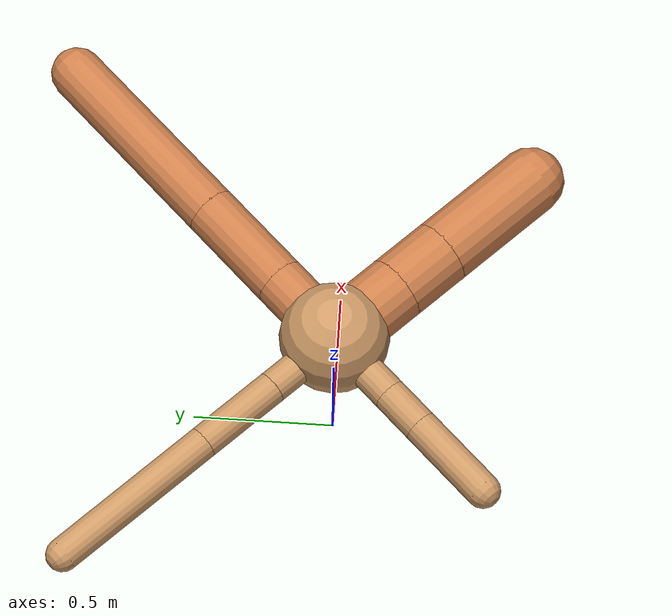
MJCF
<?xml version="1.0" ?>
<mujoco model="ant">

	<compiler angle="degree" coordinate="local" inertiafromgeom="true"/>

	<option integrator="RK4" timestep="0.01"/>

	<custom>

		<numeric data="0.0 0.0 0.55 1.0 0.0 0.0 0.0 0.0 1.0 0.0 -1.0 0.0 -1.0 0.0 1.0" name="init_qpos"/>

	</custom>

	<default>

		<joint armature="1" damping="1" limited="true"/>

		<geom conaffinity="0" condim="3" density="5.0" friction="1.5 0.1 0.1" margin="0.01" rgba="0.8 0.6 0.4 1"/>

	</default>

	<worldbody>

		<body name="torso" pos="0 0 0.75">

			<geom name="torso_geom" pos="0 0 0" size="0.19087914227119826" type="sphere"/>

			<!--joint armature="0" damping="0" limited="false" margin="0.01" name="root" pos="0 0 0" type="free"/-->

			<body name="front_left_leg" pos="0 0 0">

				<geom fromto="0 0 0 0.2 0.2 0" name="aux_1_geom" size="0.09326618933738874" type="capsule" rgba=".8 .5 .3 1"/>

				<body name="aux_1" pos="0.2 0.2 0">

					<joint axis="0 0 1" name="hip_1" pos="0.0 0.0 0.0" range="-40 40" type="hinge"/>

					<geom fromto="0 0 0 0.2565579507512408 0.2565579507512408 0" name="left_leg_geom" size="0.09326618933738874" type="capsule" rgba=".8 .5 .3 1"/>

					<body pos="0.2565579507512408 0.2565579507512408 0" name="front_left_foot">

						<joint axis="-1 1 0" name="ankle_1" pos="0.0 0.0 0.0" range="30 100" type="hinge"/>

						<geom fromto="0 0 0 0.5131159015024817 0.5131159015024817 0" name="left_ankle_geom" size="0.09326618933738874" type="capsule" rgba=".8 .5 .3 1"/>

					</body>

				</body>

			</body>

			<body name="front_right_leg" pos="0 0 0">

				<geom fromto="0 0 0 -0.2 0.2 0" name="aux_2_geom" size="0.058225992796513346" type="capsule"/>

				<body name="aux_2" pos="-0.2 0.2 0">

					<joint axis="0 0 1" name="hip_2" pos="0.0 0.0 0.0" range="-40 40" type="hinge"/>

					<geom fromto="0 0 0 -0.21772118273316285 0.21772118273316285 0" name="right_leg_geom" size="0.058225992796513346" type="capsule"/>

					<body pos="-0.21772118273316285 0.21772118273316285 0" name="front_right_foot">

						<joint axis="1 1 0" name="ankle_2" pos="0.0 0.0 0.0" range="-100 -30" type="hinge"/>

						<geom fromto="0 0 0 -0.4354423654663257 0.4354423654663257 0" name="right_ankle_geom" size="0.058225992796513346" type="capsule"/>

					</body>

				</body>

			</body>

			<body name="left_back_leg" pos="0 0 0">

				<geom fromto="0 0 0 -0.2 -0.2 0" name="aux_3_geom" size="0.06061870090160325" type="capsule"/>

				<body name="aux_3" pos="-0.2 -0.2 0">

					<joint axis="0 0 1" name="hip_3" pos="0.0 0.0 0.0" range="-40 40" type="hinge"/>

					<geom fromto="0 0 0 -0.11075438774131795 -0.11075438774131795 0" name="back_leg_geom" size="0.06061870090160325" type="capsule"/>

					<body pos="-0.11075438774131795 -0.11075438774131795 0" name="left_back_foot">

						<joint axis="-1 1 0" name="ankle_3" pos="0.0 0.0 0.0" range="-100 -30" type="hinge"/>

						<geom fromto="0 0 0 -0.2215087754826359 -0.2215087754826359 0" name="third_ankle_geom" size="0.06061870090160325" type="capsule"/>

					</body>

				</body>

			</body>

			<body name="right_back_leg" pos="0 0 0">

				<geom fromto="0 0 0 0.2 -0.2 0" name="aux_4_geom" size="0.11932442256961412" type="capsule" rgba=".8 .5 .3 1"/>

				<body name="aux_4" pos="0.2 -0.2 0">

					<joint axis="0 0 1" name="hip_4" pos="0.0 0.0 0.0" range="-40 40" type="hinge"/>

					<geom fromto="0 0 0 0.14836395418015133 -0.14836395418015133 0" name="rightback_leg_geom" size="0.11932442256961412" type="capsule" rgba=".8 .5 .3 1"/>

					<body pos="0.14836395418015133 -0.14836395418015133 0" name="right_back_foot">

						<joint axis="1 1 0" name="ankle_4" pos="0.0 0.0 0.0" range="30 100" type="hinge"/>

						<geom fromto="0 0 0 0.29672790836030266 -0.29672790836030266 0" name="fourth_ankle_geom" size="0.11932442256961412" type="capsule" rgba=".8 .5 .3 1"/>

					</body>

				</body>

			</body>

		</body>

	</worldbody>

	<actuator>

		<motor ctrllimited="true" ctrlrange="-1.0 1.0" joint="hip_4" gear="150"/>

		<motor ctrllimited="true" ctrlrange="-1.0 1.0" joint="ankle_4" gear="150"/>

		<motor ctrllimited="true" ctrlrange="-1.0 1.0" joint="hip_1" gear="150"/>

		<motor ctrllimited="true" ctrlrange="-1.0 1.0" joint="ankle_1" gear="150"/>

		<motor ctrllimited="true" ctrlrange="-1.0 1.0" joint="hip_2" gear="150"/>

		<motor ctrllimited="true" ctrlrange="-1.0 1.0" joint="ankle_2" gear="150"/>

		<motor ctrllimited="true" ctrlrange="-1.0 1.0" joint="hip_3" gear="150"/>

		<motor ctrllimited="true" ctrlrange="-1.0 1.0" joint="ankle_3" gear="150"/>

	</actuator>

</mujoco>
